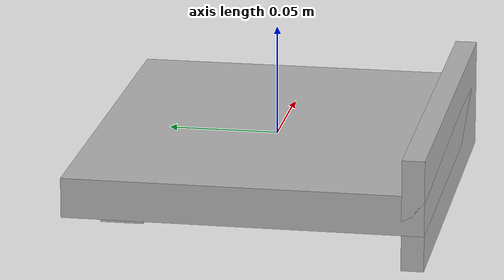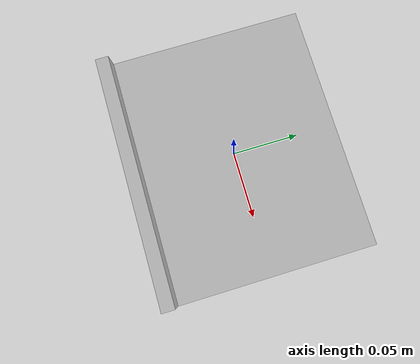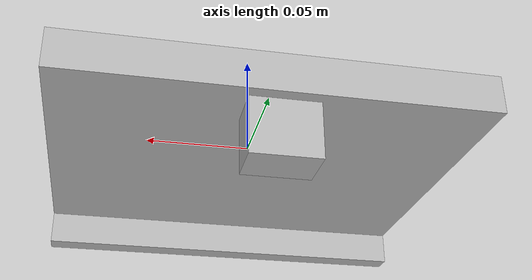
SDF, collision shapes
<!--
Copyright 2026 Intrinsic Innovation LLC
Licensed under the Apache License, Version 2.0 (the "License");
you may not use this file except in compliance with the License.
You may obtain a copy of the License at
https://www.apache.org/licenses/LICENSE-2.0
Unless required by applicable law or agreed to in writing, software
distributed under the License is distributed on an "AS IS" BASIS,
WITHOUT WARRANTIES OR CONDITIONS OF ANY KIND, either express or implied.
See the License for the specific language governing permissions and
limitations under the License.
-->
<?xml version="1.0" encoding="UTF-8"?>

<sdf version="1.6" xmlns:intrinsic="https://intrinsic.ai/">
  <model name="charuco_holder">
    <link name="body">
      <visual name="visual">
        <pose>0 0 0 0 0 0</pose>
        <geometry>
          <mesh>
            <uri>model://intrinsic/models/assets/bluebird/calibration_fixture/charuco_holder.glb</uri>
          </mesh>
        </geometry>
      </visual>
      <collision name="collision1">
        <pose>0 0 -0.005 0 0 0</pose>
        <geometry>
          <box>
            <size>0.19 0.16 0.018</size>
          </box>
        </geometry>
      </collision>
      <collision name="collision2">
        <pose>0 -0.075 -0.005 0 0 0</pose>
        <geometry>
          <box>
            <size>0.19 0.01 0.05</size>
          </box>
        </geometry>
      </collision>
      <collision name="collision3">
        <pose>0 0.07 -0.03 0 0 0</pose>
        <geometry>
          <box>
            <size>0.03 0.02 0.025</size>
          </box>
        </geometry>
      </collision>
      <inertial>
        <mass>0.1</mass>
        <pose>0 -0.03 0 0 0 0</pose>
        <inertia>
          <ixx>0.00001</ixx>
          <ixy>0</ixy>
          <ixz>0</ixz>
          <iyy>0.00001</iyy>
          <iyz>0</iyz>
          <izz>0.000015</izz>
        </inertia>
      </inertial>
    </link>
    <frame name="pattern_attachment" attached_to="body" intrinsic:create_attachment_entity="true">
      <pose relative_to="body">0 0 0 0 0 0</pose>
    </frame>
    <frame name="grasp" attached_to="body" intrinsic:create_attachment_entity="true">
      <pose relative_to="body" rotation_format="quat_xyzw">0 0.09 -0.0286 0 0.70710678 -0.70710678 0</pose>
    </frame>
  </model>
</sdf>
